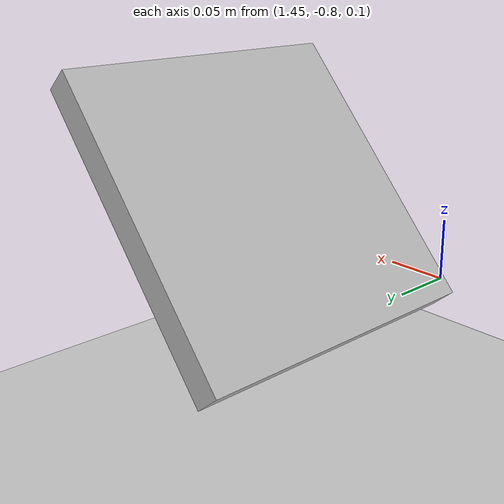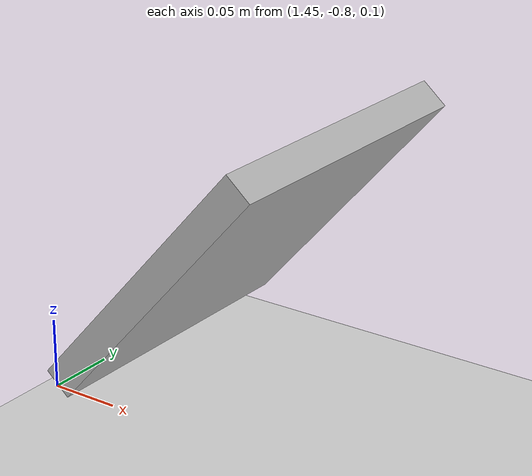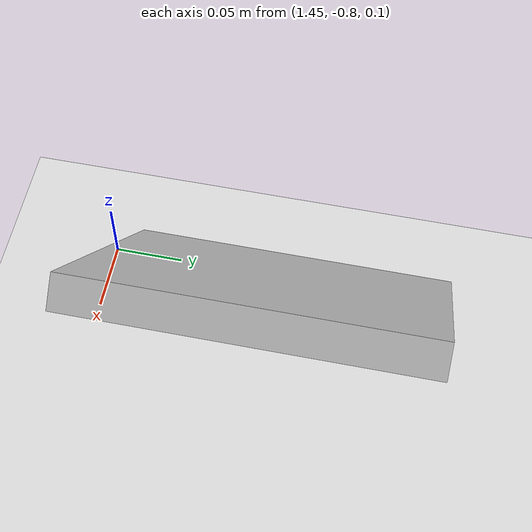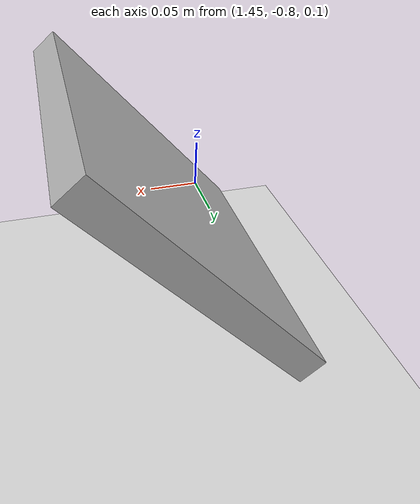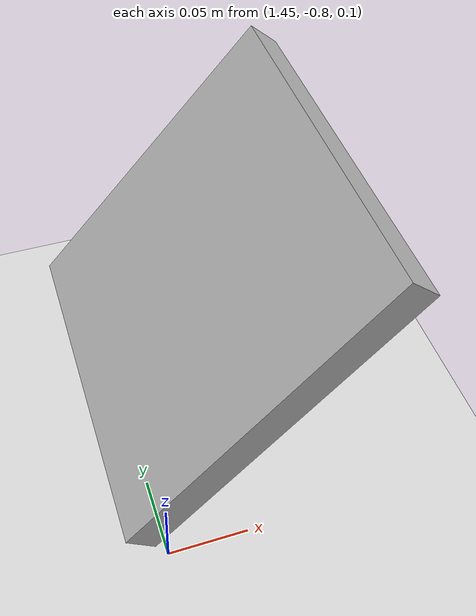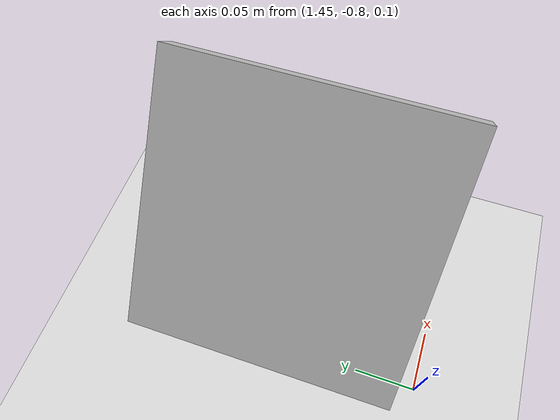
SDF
<sdf version='1.6'>
<world name='default'>
      <plugin name="xbot2_clock" filename="libxbot2_gz_clock.so"/>

  <gravity>0 0 -9.81</gravity>

  <model name="ground_plane">
    <static>true</static>
    <link name="link">
      <collision name="collision">
        <geometry>
          <plane>
            <normal>0 0 1</normal>
            <size>100 100</size>
          </plane>
        </geometry>
        <surface>
          <friction>
            <ode>
              <mu>1</mu>
              <mu2>1</mu2>
            </ode>
          </friction>
        </surface>
      </collision>
      <visual name="visual">
        <cast_shadows>false</cast_shadows>
        <geometry>
          <plane>
            <normal>0 0 1</normal>
            <size>100 100</size>
          </plane>
        </geometry>
        <material>
          <script>
            <uri>file://media/materials/scripts/gazebo.material</uri>
            <name>Gazebo/Grey</name>
          </script>
        </material>
      </visual>
    </link>
  </model>

    <!-- Global light source -->
    <include>
      <uri>model://sun</uri>
    </include>

    <!-- Focus camera on tall pendulum -->
    <gui fullscreen='0'>
      <camera name='user_camera'>
        <pose>4.927360 -4.376610 3.740080 0.000000 0.275643 2.356190</pose>
        <view_controller>orbit</view_controller>
      </camera>
    </gui>

    <physics name="update_rate" type="ode">
      <real_time_update_rate>4000</real_time_update_rate>
      <max_step_size>0.00025</max_step_size>
      <max_contacts>5</max_contacts>
      <bullet>
	<solver>
          <iters>100</iters>
          <sor>1.55</sor>
        </solver>
        <constraints>
          <contact_surface_layer>0.2</contact_surface_layer>
          <cfm>0.005</cfm>
          <erp>0.2</erp>
        </constraints>
      </bullet>
      <ode>
	<solver>
          <iters>50</iters>
          <sor>1.20</sor>
        </solver>
        <constraints>
          <contact_surface_layer>0.0002</contact_surface_layer>
          <contact_max_correcting_vel>500</contact_max_correcting_vel>
          <cfm>0.000001</cfm>
          <erp>0.3</erp>
        </constraints>
      </ode>
    </physics>

        <include>
		<uri>model://visual_pattern_small</uri>
		<pose frame=''>1.515219 -0.665199 0.181768 3.141593 -0.715539 3.141593</pose>
        </include>
</world>
</sdf>

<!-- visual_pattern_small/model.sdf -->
<sdf version="1.5">
  <model name="visual_pattern_small">
    <static>true</static>
    <link name="link">
      <visual name="visual">
        <geometry>
          <mesh>
            <uri>model://visual_pattern/meshes/visual_pattern.dae</uri>
            <scale>0.12 0.12 0.12</scale>
          </mesh>
        </geometry>
      </visual>
    </link>
  </model>
</sdf>
